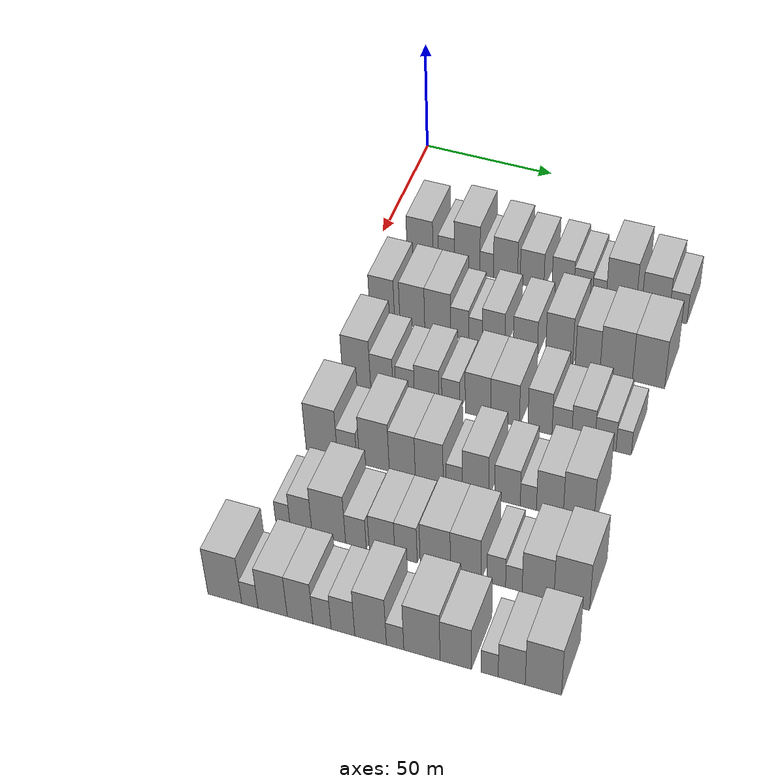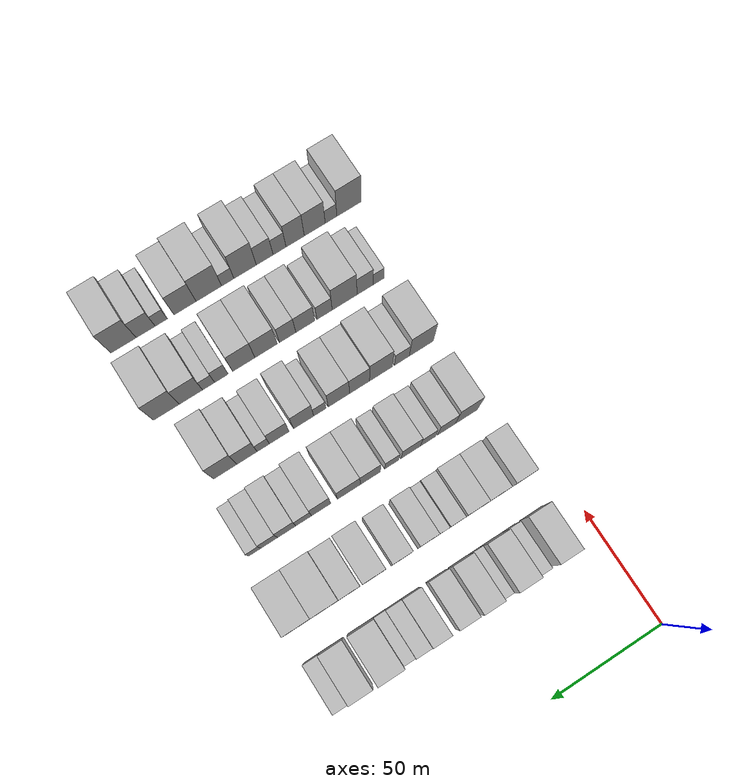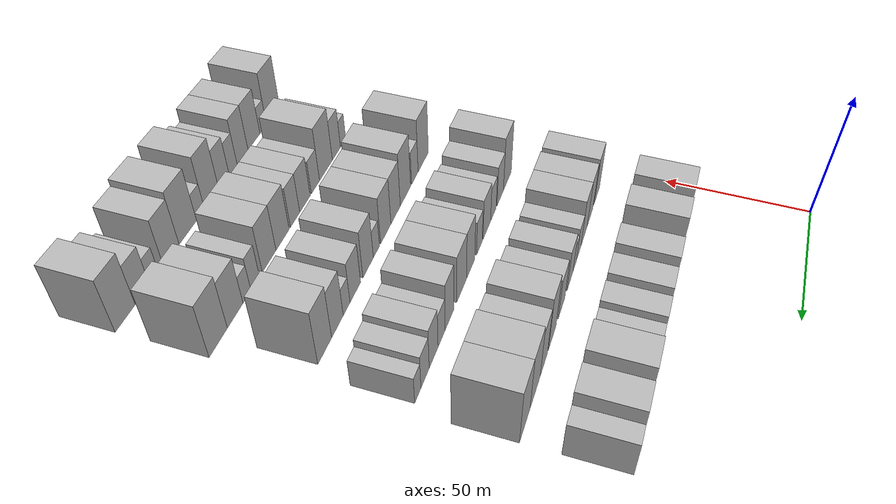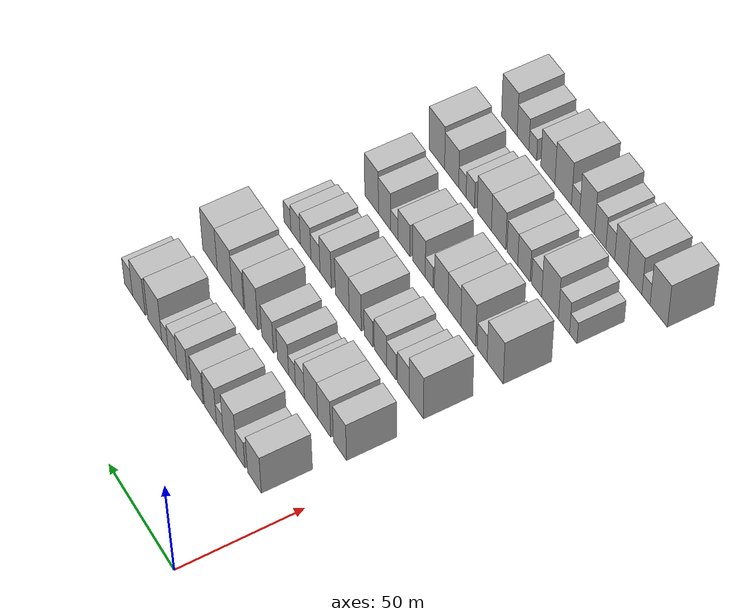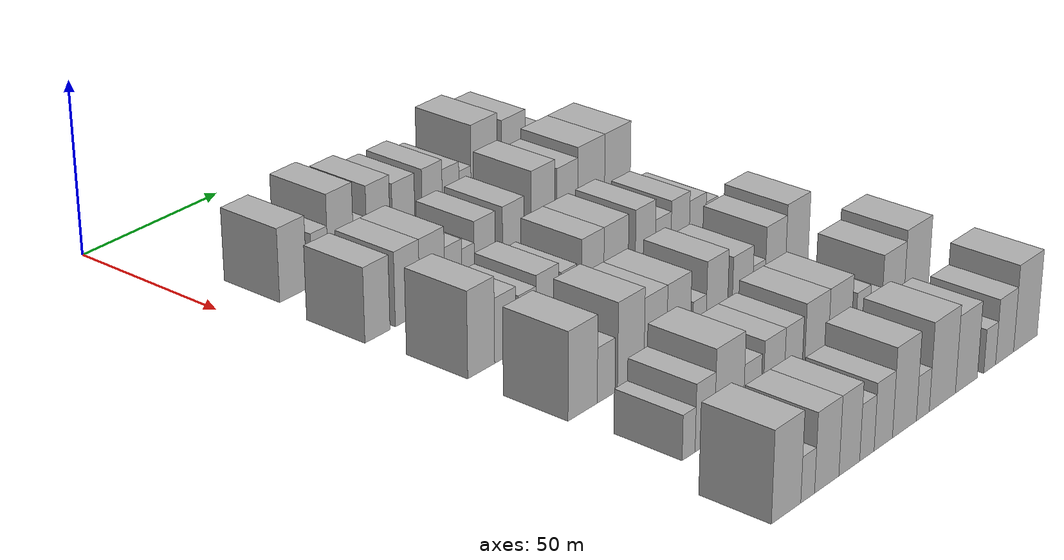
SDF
<sdf version="1.6">
 <world name="default">
  <model name="building_61">
   <static>1</static>
   <pose>50.0000 17.9974 0 0.000000 0.000000 0.000000</pose>
   <link name="link">
    <pose>0 0 10.50 0 0 0</pose>
    <collision name="collision"><geometry><box><size>20.0000 10.1035 21.0000</size></box></geometry></collision>
    <visual name="visual">
     <cast_shadows>0</cast_shadows>
     <geometry><box><size>20.0000 10.1035 21.0000</size></box></geometry>
     <material>
      <script>
       <uri>model://HANNAS_wall/materials/scripts</uri>
       <uri>model://HANNAS_wall/materials/textures</uri>
       <name>vrc/HANNAS_wall</name>
      </script>
     </material>
    </visual>
   </link>
  </model>
  <model name="building_62">
   <static>1</static>
   <pose>50.0000 28.1549 0 0.000000 0.000000 0.000000</pose>
   <link name="link">
    <pose>0 0 7.50 0 0 0</pose>
    <collision name="collision"><geometry><box><size>20.0000 6.2114 15.0000</size></box></geometry></collision>
    <visual name="visual">
     <cast_shadows>0</cast_shadows>
     <geometry><box><size>20.0000 6.2114 15.0000</size></box></geometry>
     <material>
      <script>
       <uri>model://HANNAS_wall/materials/scripts</uri>
       <uri>model://HANNAS_wall/materials/textures</uri>
       <name>vrc/HANNAS_wall</name>
      </script>
     </material>
    </visual>
   </link>
  </model>
  <model name="building_63">
   <static>1</static>
   <pose>50.0000 36.1741 0 0.000000 0.000000 0.000000</pose>
   <link name="link">
    <pose>0 0 12.00 0 0 0</pose>
    <collision name="collision"><geometry><box><size>20.0000 9.8270 24.0000</size></box></geometry></collision>
    <visual name="visual">
     <cast_shadows>0</cast_shadows>
     <geometry><box><size>20.0000 9.8270 24.0000</size></box></geometry>
     <material>
      <script>
       <uri>model://HANNAS_wall/materials/scripts</uri>
       <uri>model://HANNAS_wall/materials/textures</uri>
       <name>vrc/HANNAS_wall</name>
      </script>
     </material>
    </visual>
   </link>
  </model>
  <model name="building_64">
   <static>1</static>
   <pose>50.0000 43.6638 0 0.000000 0.000000 0.000000</pose>
   <link name="link">
    <pose>0 0 6.00 0 0 0</pose>
    <collision name="collision"><geometry><box><size>20.0000 5.1523 12.0000</size></box></geometry></collision>
    <visual name="visual">
     <cast_shadows>0</cast_shadows>
     <geometry><box><size>20.0000 5.1523 12.0000</size></box></geometry>
     <material>
      <script>
       <uri>model://HANNAS_wall/materials/scripts</uri>
       <uri>model://HANNAS_wall/materials/textures</uri>
       <name>vrc/HANNAS_wall</name>
      </script>
     </material>
    </visual>
   </link>
  </model>
  <model name="building_65">
   <static>1</static>
   <pose>50.0000 50.8078 0 0.000000 0.000000 0.000000</pose>
   <link name="link">
    <pose>0 0 10.50 0 0 0</pose>
    <collision name="collision"><geometry><box><size>20.0000 9.1359 21.0000</size></box></geometry></collision>
    <visual name="visual">
     <cast_shadows>0</cast_shadows>
     <geometry><box><size>20.0000 9.1359 21.0000</size></box></geometry>
     <material>
      <script>
       <uri>model://HANNAS_wall/materials/scripts</uri>
       <uri>model://HANNAS_wall/materials/textures</uri>
       <name>vrc/HANNAS_wall</name>
      </script>
     </material>
    </visual>
   </link>
  </model>
  <model name="building_66">
   <static>1</static>
   <pose>50.0000 60.8587 0 0.000000 0.000000 0.000000</pose>
   <link name="link">
    <pose>0 0 9.00 0 0 0</pose>
    <collision name="collision"><geometry><box><size>20.0000 8.9657 18.0000</size></box></geometry></collision>
    <visual name="visual">
     <cast_shadows>0</cast_shadows>
     <geometry><box><size>20.0000 8.9657 18.0000</size></box></geometry>
     <material>
      <script>
       <uri>model://HANNAS_wall/materials/scripts</uri>
       <uri>model://HANNAS_wall/materials/textures</uri>
       <name>vrc/HANNAS_wall</name>
      </script>
     </material>
    </visual>
   </link>
  </model>
  <model name="building_67">
   <static>1</static>
   <pose>50.0000 72.4651 0 0.000000 0.000000 0.000000</pose>
   <link name="link">
    <pose>0 0 9.00 0 0 0</pose>
    <collision name="collision"><geometry><box><size>20.0000 8.2472 18.0000</size></box></geometry></collision>
    <visual name="visual">
     <cast_shadows>0</cast_shadows>
     <geometry><box><size>20.0000 8.2472 18.0000</size></box></geometry>
     <material>
      <script>
       <uri>model://HANNAS_wall/materials/scripts</uri>
       <uri>model://HANNAS_wall/materials/textures</uri>
       <name>vrc/HANNAS_wall</name>
      </script>
     </material>
    </visual>
   </link>
  </model>
  <model name="building_68">
   <static>1</static>
   <pose>50.0000 80.0675 0 0.000000 0.000000 0.000000</pose>
   <link name="link">
    <pose>0 0 7.50 0 0 0</pose>
    <collision name="collision"><geometry><box><size>20.0000 6.9575 15.0000</size></box></geometry></collision>
    <visual name="visual">
     <cast_shadows>0</cast_shadows>
     <geometry><box><size>20.0000 6.9575 15.0000</size></box></geometry>
     <material>
      <script>
       <uri>model://HANNAS_wall/materials/scripts</uri>
       <uri>model://HANNAS_wall/materials/textures</uri>
       <name>vrc/HANNAS_wall</name>
      </script>
     </material>
    </visual>
   </link>
  </model>
  <model name="building_69">
   <static>1</static>
   <pose>50.0000 86.0731 0 0.000000 0.000000 0.000000</pose>
   <link name="link">
    <pose>0 0 6.00 0 0 0</pose>
    <collision name="collision"><geometry><box><size>20.0000 5.0536 12.0000</size></box></geometry></collision>
    <visual name="visual">
     <cast_shadows>0</cast_shadows>
     <geometry><box><size>20.0000 5.0536 12.0000</size></box></geometry>
     <material>
      <script>
       <uri>model://HANNAS_wall/materials/scripts</uri>
       <uri>model://HANNAS_wall/materials/textures</uri>
       <name>vrc/HANNAS_wall</name>
      </script>
     </material>
    </visual>
   </link>
  </model>
  <model name="building_70">
   <static>1</static>
   <pose>50.0000 94.1689 0 0.000000 0.000000 0.000000</pose>
   <link name="link">
    <pose>0 0 12.00 0 0 0</pose>
    <collision name="collision"><geometry><box><size>20.0000 11.1380 24.0000</size></box></geometry></collision>
    <visual name="visual">
     <cast_shadows>0</cast_shadows>
     <geometry><box><size>20.0000 11.1380 24.0000</size></box></geometry>
     <material>
      <script>
       <uri>model://HANNAS_wall/materials/scripts</uri>
       <uri>model://HANNAS_wall/materials/textures</uri>
       <name>vrc/HANNAS_wall</name>
      </script>
     </material>
    </visual>
   </link>
  </model>
  <model name="building_71">
   <static>1</static>
   <pose>50.0000 106.8339 0 0.000000 0.000000 0.000000</pose>
   <link name="link">
    <pose>0 0 10.50 0 0 0</pose>
    <collision name="collision"><geometry><box><size>20.0000 10.1919 21.0000</size></box></geometry></collision>
    <visual name="visual">
     <cast_shadows>0</cast_shadows>
     <geometry><box><size>20.0000 10.1919 21.0000</size></box></geometry>
     <material>
      <script>
       <uri>model://HANNAS_wall/materials/scripts</uri>
       <uri>model://HANNAS_wall/materials/textures</uri>
       <name>vrc/HANNAS_wall</name>
      </script>
     </material>
    </visual>
   </link>
  </model>
  <model name="building_72">
   <static>1</static>
   <pose>50.0000 115.2195 0 0.000000 0.000000 0.000000</pose>
   <link name="link">
    <pose>0 0 7.50 0 0 0</pose>
    <collision name="collision"><geometry><box><size>20.0000 6.5793 15.0000</size></box></geometry></collision>
    <visual name="visual">
     <cast_shadows>0</cast_shadows>
     <geometry><box><size>20.0000 6.5793 15.0000</size></box></geometry>
     <material>
      <script>
       <uri>model://HANNAS_wall/materials/scripts</uri>
       <uri>model://HANNAS_wall/materials/textures</uri>
       <name>vrc/HANNAS_wall</name>
      </script>
     </material>
    </visual>
   </link>
  </model>
  <model name="building_183">
   <static>1</static>
   <pose>82.0000 15.0049 0 0.000000 0.000000 0.000000</pose>
   <link name="link">
    <pose>0 0 10.50 0 0 0</pose>
    <collision name="collision"><geometry><box><size>20.0000 9.3502 21.0000</size></box></geometry></collision>
    <visual name="visual">
     <cast_shadows>0</cast_shadows>
     <geometry><box><size>20.0000 9.3502 21.0000</size></box></geometry>
     <material>
      <script>
       <uri>model://HANNAS_wall/materials/scripts</uri>
       <uri>model://HANNAS_wall/materials/textures</uri>
       <name>vrc/HANNAS_wall</name>
      </script>
     </material>
    </visual>
   </link>
  </model>
  <model name="building_184">
   <static>1</static>
   <pose>82.0000 26.3731 0 0.000000 0.000000 0.000000</pose>
   <link name="link">
    <pose>0 0 10.50 0 0 0</pose>
    <collision name="collision"><geometry><box><size>20.0000 9.3861 21.0000</size></box></geometry></collision>
    <visual name="visual">
     <cast_shadows>0</cast_shadows>
     <geometry><box><size>20.0000 9.3861 21.0000</size></box></geometry>
     <material>
      <script>
       <uri>model://HANNAS_wall/materials/scripts</uri>
       <uri>model://HANNAS_wall/materials/textures</uri>
       <name>vrc/HANNAS_wall</name>
      </script>
     </material>
    </visual>
   </link>
  </model>
  <model name="building_185">
   <static>1</static>
   <pose>82.0000 35.9225 0 0.000000 0.000000 0.000000</pose>
   <link name="link">
    <pose>0 0 10.50 0 0 0</pose>
    <collision name="collision"><geometry><box><size>20.0000 9.7128 21.0000</size></box></geometry></collision>
    <visual name="visual">
     <cast_shadows>0</cast_shadows>
     <geometry><box><size>20.0000 9.7128 21.0000</size></box></geometry>
     <material>
      <script>
       <uri>model://HANNAS_wall/materials/scripts</uri>
       <uri>model://HANNAS_wall/materials/textures</uri>
       <name>vrc/HANNAS_wall</name>
      </script>
     </material>
    </visual>
   </link>
  </model>
  <model name="building_186">
   <static>1</static>
   <pose>82.0000 44.1371 0 0.000000 0.000000 0.000000</pose>
   <link name="link">
    <pose>0 0 7.50 0 0 0</pose>
    <collision name="collision"><geometry><box><size>20.0000 6.7163 15.0000</size></box></geometry></collision>
    <visual name="visual">
     <cast_shadows>0</cast_shadows>
     <geometry><box><size>20.0000 6.7163 15.0000</size></box></geometry>
     <material>
      <script>
       <uri>model://HANNAS_wall/materials/scripts</uri>
       <uri>model://HANNAS_wall/materials/textures</uri>
       <name>vrc/HANNAS_wall</name>
      </script>
     </material>
    </visual>
   </link>
  </model>
  <model name="building_187">
   <static>1</static>
   <pose>82.0000 49.9935 0 0.000000 0.000000 0.000000</pose>
   <link name="link">
    <pose>0 0 6.00 0 0 0</pose>
    <collision name="collision"><geometry><box><size>20.0000 4.9966 12.0000</size></box></geometry></collision>
    <visual name="visual">
     <cast_shadows>0</cast_shadows>
     <geometry><box><size>20.0000 4.9966 12.0000</size></box></geometry>
     <material>
      <script>
       <uri>model://HANNAS_wall/materials/scripts</uri>
       <uri>model://HANNAS_wall/materials/textures</uri>
       <name>vrc/HANNAS_wall</name>
      </script>
     </material>
    </visual>
   </link>
  </model>
  <model name="building_188">
   <static>1</static>
   <pose>82.0000 56.6898 0 0.000000 0.000000 0.000000</pose>
   <link name="link">
    <pose>0 0 9.00 0 0 0</pose>
    <collision name="collision"><geometry><box><size>20.0000 8.3959 18.0000</size></box></geometry></collision>
    <visual name="visual">
     <cast_shadows>0</cast_shadows>
     <geometry><box><size>20.0000 8.3959 18.0000</size></box></geometry>
     <material>
      <script>
       <uri>model://HANNAS_wall/materials/scripts</uri>
       <uri>model://HANNAS_wall/materials/textures</uri>
       <name>vrc/HANNAS_wall</name>
      </script>
     </material>
    </visual>
   </link>
  </model>
  <model name="building_189">
   <static>1</static>
   <pose>82.0000 68.3073 0 0.000000 0.000000 0.000000</pose>
   <link name="link">
    <pose>0 0 9.00 0 0 0</pose>
    <collision name="collision"><geometry><box><size>20.0000 8.8391 18.0000</size></box></geometry></collision>
    <visual name="visual">
     <cast_shadows>0</cast_shadows>
     <geometry><box><size>20.0000 8.8391 18.0000</size></box></geometry>
     <material>
      <script>
       <uri>model://HANNAS_wall/materials/scripts</uri>
       <uri>model://HANNAS_wall/materials/textures</uri>
       <name>vrc/HANNAS_wall</name>
      </script>
     </material>
    </visual>
   </link>
  </model>
  <model name="building_190">
   <static>1</static>
   <pose>82.0000 80.6348 0 0.000000 0.000000 0.000000</pose>
   <link name="link">
    <pose>0 0 12.00 0 0 0</pose>
    <collision name="collision"><geometry><box><size>20.0000 9.8159 24.0000</size></box></geometry></collision>
    <visual name="visual">
     <cast_shadows>0</cast_shadows>
     <geometry><box><size>20.0000 9.8159 24.0000</size></box></geometry>
     <material>
      <script>
       <uri>model://HANNAS_wall/materials/scripts</uri>
       <uri>model://HANNAS_wall/materials/textures</uri>
       <name>vrc/HANNAS_wall</name>
      </script>
     </material>
    </visual>
   </link>
  </model>
  <model name="building_191">
   <static>1</static>
   <pose>82.0000 91.0272 0 0.000000 0.000000 0.000000</pose>
   <link name="link">
    <pose>0 0 10.50 0 0 0</pose>
    <collision name="collision"><geometry><box><size>20.0000 8.9688 21.0000</size></box></geometry></collision>
    <visual name="visual">
     <cast_shadows>0</cast_shadows>
     <geometry><box><size>20.0000 8.9688 21.0000</size></box></geometry>
     <material>
      <script>
       <uri>model://HANNAS_wall/materials/scripts</uri>
       <uri>model://HANNAS_wall/materials/textures</uri>
       <name>vrc/HANNAS_wall</name>
      </script>
     </material>
    </visual>
   </link>
  </model>
  <model name="building_192">
   <static>1</static>
   <pose>82.0000 101.3360 0 0.000000 0.000000 0.000000</pose>
   <link name="link">
    <pose>0 0 12.00 0 0 0</pose>
    <collision name="collision"><geometry><box><size>20.0000 11.6489 24.0000</size></box></geometry></collision>
    <visual name="visual">
     <cast_shadows>0</cast_shadows>
     <geometry><box><size>20.0000 11.6489 24.0000</size></box></geometry>
     <material>
      <script>
       <uri>model://HANNAS_wall/materials/scripts</uri>
       <uri>model://HANNAS_wall/materials/textures</uri>
       <name>vrc/HANNAS_wall</name>
      </script>
     </material>
    </visual>
   </link>
  </model>
  <model name="building_193">
   <static>1</static>
   <pose>82.0000 112.9046 0 0.000000 0.000000 0.000000</pose>
   <link name="link">
    <pose>0 0 12.00 0 0 0</pose>
    <collision name="collision"><geometry><box><size>20.0000 11.4883 24.0000</size></box></geometry></collision>
    <visual name="visual">
     <cast_shadows>0</cast_shadows>
     <geometry><box><size>20.0000 11.4883 24.0000</size></box></geometry>
     <material>
      <script>
       <uri>model://HANNAS_wall/materials/scripts</uri>
       <uri>model://HANNAS_wall/materials/textures</uri>
       <name>vrc/HANNAS_wall</name>
      </script>
     </material>
    </visual>
   </link>
  </model>
  <model name="building_297">
   <static>1</static>
   <pose>114.0000 17.5081 0 0.000000 0.000000 0.000000</pose>
   <link name="link">
    <pose>0 0 12.00 0 0 0</pose>
    <collision name="collision"><geometry><box><size>20.0000 10.1824 24.0000</size></box></geometry></collision>
    <visual name="visual">
     <cast_shadows>0</cast_shadows>
     <geometry><box><size>20.0000 10.1824 24.0000</size></box></geometry>
     <material>
      <script>
       <uri>model://HANNAS_wall/materials/scripts</uri>
       <uri>model://HANNAS_wall/materials/textures</uri>
       <name>vrc/HANNAS_wall</name>
      </script>
     </material>
    </visual>
   </link>
  </model>
  <model name="building_298">
   <static>1</static>
   <pose>114.0000 26.7199 0 0.000000 0.000000 0.000000</pose>
   <link name="link">
    <pose>0 0 9.00 0 0 0</pose>
    <collision name="collision"><geometry><box><size>20.0000 8.2411 18.0000</size></box></geometry></collision>
    <visual name="visual">
     <cast_shadows>0</cast_shadows>
     <geometry><box><size>20.0000 8.2411 18.0000</size></box></geometry>
     <material>
      <script>
       <uri>model://HANNAS_wall/materials/scripts</uri>
       <uri>model://HANNAS_wall/materials/textures</uri>
       <name>vrc/HANNAS_wall</name>
      </script>
     </material>
    </visual>
   </link>
  </model>
  <model name="building_299">
   <static>1</static>
   <pose>114.0000 35.2354 0 0.000000 0.000000 0.000000</pose>
   <link name="link">
    <pose>0 0 7.50 0 0 0</pose>
    <collision name="collision"><geometry><box><size>20.0000 6.7900 15.0000</size></box></geometry></collision>
    <visual name="visual">
     <cast_shadows>0</cast_shadows>
     <geometry><box><size>20.0000 6.7900 15.0000</size></box></geometry>
     <material>
      <script>
       <uri>model://HANNAS_wall/materials/scripts</uri>
       <uri>model://HANNAS_wall/materials/textures</uri>
       <name>vrc/HANNAS_wall</name>
      </script>
     </material>
    </visual>
   </link>
  </model>
  <model name="building_300">
   <static>1</static>
   <pose>114.0000 43.0948 0 0.000000 0.000000 0.000000</pose>
   <link name="link">
    <pose>0 0 9.00 0 0 0</pose>
    <collision name="collision"><geometry><box><size>20.0000 8.9289 18.0000</size></box></geometry></collision>
    <visual name="visual">
     <cast_shadows>0</cast_shadows>
     <geometry><box><size>20.0000 8.9289 18.0000</size></box></geometry>
     <material>
      <script>
       <uri>model://HANNAS_wall/materials/scripts</uri>
       <uri>model://HANNAS_wall/materials/textures</uri>
       <name>vrc/HANNAS_wall</name>
      </script>
     </material>
    </visual>
   </link>
  </model>
  <model name="building_301">
   <static>1</static>
   <pose>114.0000 51.7584 0 0.000000 0.000000 0.000000</pose>
   <link name="link">
    <pose>0 0 7.50 0 0 0</pose>
    <collision name="collision"><geometry><box><size>20.0000 6.3983 15.0000</size></box></geometry></collision>
    <visual name="visual">
     <cast_shadows>0</cast_shadows>
     <geometry><box><size>20.0000 6.3983 15.0000</size></box></geometry>
     <material>
      <script>
       <uri>model://HANNAS_wall/materials/scripts</uri>
       <uri>model://HANNAS_wall/materials/textures</uri>
       <name>vrc/HANNAS_wall</name>
      </script>
     </material>
    </visual>
   </link>
  </model>
  <model name="building_302">
   <static>1</static>
   <pose>114.0000 61.4919 0 0.000000 0.000000 0.000000</pose>
   <link name="link">
    <pose>0 0 10.50 0 0 0</pose>
    <collision name="collision"><geometry><box><size>20.0000 9.0688 21.0000</size></box></geometry></collision>
    <visual name="visual">
     <cast_shadows>0</cast_shadows>
     <geometry><box><size>20.0000 9.0688 21.0000</size></box></geometry>
     <material>
      <script>
       <uri>model://HANNAS_wall/materials/scripts</uri>
       <uri>model://HANNAS_wall/materials/textures</uri>
       <name>vrc/HANNAS_wall</name>
      </script>
     </material>
    </visual>
   </link>
  </model>
  <model name="building_303">
   <static>1</static>
   <pose>114.0000 71.1372 0 0.000000 0.000000 0.000000</pose>
   <link name="link">
    <pose>0 0 10.50 0 0 0</pose>
    <collision name="collision"><geometry><box><size>20.0000 10.2218 21.0000</size></box></geometry></collision>
    <visual name="visual">
     <cast_shadows>0</cast_shadows>
     <geometry><box><size>20.0000 10.2218 21.0000</size></box></geometry>
     <material>
      <script>
       <uri>model://HANNAS_wall/materials/scripts</uri>
       <uri>model://HANNAS_wall/materials/textures</uri>
       <name>vrc/HANNAS_wall</name>
      </script>
     </material>
    </visual>
   </link>
  </model>
  <model name="building_304">
   <static>1</static>
   <pose>114.0000 83.5273 0 0.000000 0.000000 0.000000</pose>
   <link name="link">
    <pose>0 0 10.50 0 0 0</pose>
    <collision name="collision"><geometry><box><size>20.0000 8.5583 21.0000</size></box></geometry></collision>
    <visual name="visual">
     <cast_shadows>0</cast_shadows>
     <geometry><box><size>20.0000 8.5583 21.0000</size></box></geometry>
     <material>
      <script>
       <uri>model://HANNAS_wall/materials/scripts</uri>
       <uri>model://HANNAS_wall/materials/textures</uri>
       <name>vrc/HANNAS_wall</name>
      </script>
     </material>
    </visual>
   </link>
  </model>
  <model name="building_305">
   <static>1</static>
   <pose>114.0000 91.2476 0 0.000000 0.000000 0.000000</pose>
   <link name="link">
    <pose>0 0 7.50 0 0 0</pose>
    <collision name="collision"><geometry><box><size>20.0000 6.8824 15.0000</size></box></geometry></collision>
    <visual name="visual">
     <cast_shadows>0</cast_shadows>
     <geometry><box><size>20.0000 6.8824 15.0000</size></box></geometry>
     <material>
      <script>
       <uri>model://HANNAS_wall/materials/scripts</uri>
       <uri>model://HANNAS_wall/materials/textures</uri>
       <name>vrc/HANNAS_wall</name>
      </script>
     </material>
    </visual>
   </link>
  </model>
  <model name="building_306">
   <static>1</static>
   <pose>114.0000 98.7463 0 0.000000 0.000000 0.000000</pose>
   <link name="link">
    <pose>0 0 9.00 0 0 0</pose>
    <collision name="collision"><geometry><box><size>20.0000 8.1150 18.0000</size></box></geometry></collision>
    <visual name="visual">
     <cast_shadows>0</cast_shadows>
     <geometry><box><size>20.0000 8.1150 18.0000</size></box></geometry>
     <material>
      <script>
       <uri>model://HANNAS_wall/materials/scripts</uri>
       <uri>model://HANNAS_wall/materials/textures</uri>
       <name>vrc/HANNAS_wall</name>
      </script>
     </material>
    </visual>
   </link>
  </model>
  <model name="building_307">
   <static>1</static>
   <pose>114.0000 106.4824 0 0.000000 0.000000 0.000000</pose>
   <link name="link">
    <pose>0 0 7.50 0 0 0</pose>
    <collision name="collision"><geometry><box><size>20.0000 7.3571 15.0000</size></box></geometry></collision>
    <visual name="visual">
     <cast_shadows>0</cast_shadows>
     <geometry><box><size>20.0000 7.3571 15.0000</size></box></geometry>
     <material>
      <script>
       <uri>model://HANNAS_wall/materials/scripts</uri>
       <uri>model://HANNAS_wall/materials/textures</uri>
       <name>vrc/HANNAS_wall</name>
      </script>
     </material>
    </visual>
   </link>
  </model>
  <model name="building_308">
   <static>1</static>
   <pose>114.0000 112.8277 0 0.000000 0.000000 0.000000</pose>
   <link name="link">
    <pose>0 0 6.00 0 0 0</pose>
    <collision name="collision"><geometry><box><size>20.0000 5.3336 12.0000</size></box></geometry></collision>
    <visual name="visual">
     <cast_shadows>0</cast_shadows>
     <geometry><box><size>20.0000 5.3336 12.0000</size></box></geometry>
     <material>
      <script>
       <uri>model://HANNAS_wall/materials/scripts</uri>
       <uri>model://HANNAS_wall/materials/textures</uri>
       <name>vrc/HANNAS_wall</name>
      </script>
     </material>
    </visual>
   </link>
  </model>
  <model name="building_414">
   <static>1</static>
   <pose>146.0000 17.1579 0 0.000000 0.000000 0.000000</pose>
   <link name="link">
    <pose>0 0 12.00 0 0 0</pose>
    <collision name="collision"><geometry><box><size>20.0000 11.1944 24.0000</size></box></geometry></collision>
    <visual name="visual">
     <cast_shadows>0</cast_shadows>
     <geometry><box><size>20.0000 11.1944 24.0000</size></box></geometry>
     <material>
      <script>
       <uri>model://HANNAS_wall/materials/scripts</uri>
       <uri>model://HANNAS_wall/materials/textures</uri>
       <name>vrc/HANNAS_wall</name>
      </script>
     </material>
    </visual>
   </link>
  </model>
  <model name="building_415">
   <static>1</static>
   <pose>146.0000 26.2117 0 0.000000 0.000000 0.000000</pose>
   <link name="link">
    <pose>0 0 7.50 0 0 0</pose>
    <collision name="collision"><geometry><box><size>20.0000 6.9132 15.0000</size></box></geometry></collision>
    <visual name="visual">
     <cast_shadows>0</cast_shadows>
     <geometry><box><size>20.0000 6.9132 15.0000</size></box></geometry>
     <material>
      <script>
       <uri>model://HANNAS_wall/materials/scripts</uri>
       <uri>model://HANNAS_wall/materials/textures</uri>
       <name>vrc/HANNAS_wall</name>
      </script>
     </material>
    </visual>
   </link>
  </model>
  <model name="building_416">
   <static>1</static>
   <pose>146.0000 35.9167 0 0.000000 0.000000 0.000000</pose>
   <link name="link">
    <pose>0 0 12.00 0 0 0</pose>
    <collision name="collision"><geometry><box><size>20.0000 10.4969 24.0000</size></box></geometry></collision>
    <visual name="visual">
     <cast_shadows>0</cast_shadows>
     <geometry><box><size>20.0000 10.4969 24.0000</size></box></geometry>
     <material>
      <script>
       <uri>model://HANNAS_wall/materials/scripts</uri>
       <uri>model://HANNAS_wall/materials/textures</uri>
       <name>vrc/HANNAS_wall</name>
      </script>
     </material>
    </visual>
   </link>
  </model>
  <model name="building_417">
   <static>1</static>
   <pose>146.0000 45.7508 0 0.000000 0.000000 0.000000</pose>
   <link name="link">
    <pose>0 0 10.50 0 0 0</pose>
    <collision name="collision"><geometry><box><size>20.0000 9.1714 21.0000</size></box></geometry></collision>
    <visual name="visual">
     <cast_shadows>0</cast_shadows>
     <geometry><box><size>20.0000 9.1714 21.0000</size></box></geometry>
     <material>
      <script>
       <uri>model://HANNAS_wall/materials/scripts</uri>
       <uri>model://HANNAS_wall/materials/textures</uri>
       <name>vrc/HANNAS_wall</name>
      </script>
     </material>
    </visual>
   </link>
  </model>
  <model name="building_418">
   <static>1</static>
   <pose>146.0000 55.2197 0 0.000000 0.000000 0.000000</pose>
   <link name="link">
    <pose>0 0 10.50 0 0 0</pose>
    <collision name="collision"><geometry><box><size>20.0000 9.7663 21.0000</size></box></geometry></collision>
    <visual name="visual">
     <cast_shadows>0</cast_shadows>
     <geometry><box><size>20.0000 9.7663 21.0000</size></box></geometry>
     <material>
      <script>
       <uri>model://HANNAS_wall/materials/scripts</uri>
       <uri>model://HANNAS_wall/materials/textures</uri>
       <name>vrc/HANNAS_wall</name>
      </script>
     </material>
    </visual>
   </link>
  </model>
  <model name="building_419">
   <static>1</static>
   <pose>146.0000 63.8974 0 0.000000 0.000000 0.000000</pose>
   <link name="link">
    <pose>0 0 6.00 0 0 0</pose>
    <collision name="collision"><geometry><box><size>20.0000 5.5892 12.0000</size></box></geometry></collision>
    <visual name="visual">
     <cast_shadows>0</cast_shadows>
     <geometry><box><size>20.0000 5.5892 12.0000</size></box></geometry>
     <material>
      <script>
       <uri>model://HANNAS_wall/materials/scripts</uri>
       <uri>model://HANNAS_wall/materials/textures</uri>
       <name>vrc/HANNAS_wall</name>
      </script>
     </material>
    </visual>
   </link>
  </model>
  <model name="building_420">
   <static>1</static>
   <pose>146.0000 71.2659 0 0.000000 0.000000 0.000000</pose>
   <link name="link">
    <pose>0 0 10.50 0 0 0</pose>
    <collision name="collision"><geometry><box><size>20.0000 9.1478 21.0000</size></box></geometry></collision>
    <visual name="visual">
     <cast_shadows>0</cast_shadows>
     <geometry><box><size>20.0000 9.1478 21.0000</size></box></geometry>
     <material>
      <script>
       <uri>model://HANNAS_wall/materials/scripts</uri>
       <uri>model://HANNAS_wall/materials/textures</uri>
       <name>vrc/HANNAS_wall</name>
      </script>
     </material>
    </visual>
   </link>
  </model>
  <model name="building_421">
   <static>1</static>
   <pose>146.0000 82.2584 0 0.000000 0.000000 0.000000</pose>
   <link name="link">
    <pose>0 0 9.00 0 0 0</pose>
    <collision name="collision"><geometry><box><size>20.0000 8.8373 18.0000</size></box></geometry></collision>
    <visual name="visual">
     <cast_shadows>0</cast_shadows>
     <geometry><box><size>20.0000 8.8373 18.0000</size></box></geometry>
     <material>
      <script>
       <uri>model://HANNAS_wall/materials/scripts</uri>
       <uri>model://HANNAS_wall/materials/textures</uri>
       <name>vrc/HANNAS_wall</name>
      </script>
     </material>
    </visual>
   </link>
  </model>
  <model name="building_422">
   <static>1</static>
   <pose>146.0000 89.4345 0 0.000000 0.000000 0.000000</pose>
   <link name="link">
    <pose>0 0 6.00 0 0 0</pose>
    <collision name="collision"><geometry><box><size>20.0000 5.5148 12.0000</size></box></geometry></collision>
    <visual name="visual">
     <cast_shadows>0</cast_shadows>
     <geometry><box><size>20.0000 5.5148 12.0000</size></box></geometry>
     <material>
      <script>
       <uri>model://HANNAS_wall/materials/scripts</uri>
       <uri>model://HANNAS_wall/materials/textures</uri>
       <name>vrc/HANNAS_wall</name>
      </script>
     </material>
    </visual>
   </link>
  </model>
  <model name="building_423">
   <static>1</static>
   <pose>146.0000 96.7338 0 0.000000 0.000000 0.000000</pose>
   <link name="link">
    <pose>0 0 10.50 0 0 0</pose>
    <collision name="collision"><geometry><box><size>20.0000 9.0839 21.0000</size></box></geometry></collision>
    <visual name="visual">
     <cast_shadows>0</cast_shadows>
     <geometry><box><size>20.0000 9.0839 21.0000</size></box></geometry>
     <material>
      <script>
       <uri>model://HANNAS_wall/materials/scripts</uri>
       <uri>model://HANNAS_wall/materials/textures</uri>
       <name>vrc/HANNAS_wall</name>
      </script>
     </material>
    </visual>
   </link>
  </model>
  <model name="building_424">
   <static>1</static>
   <pose>146.0000 106.4583 0 0.000000 0.000000 0.000000</pose>
   <link name="link">
    <pose>0 0 12.00 0 0 0</pose>
    <collision name="collision"><geometry><box><size>20.0000 10.3649 24.0000</size></box></geometry></collision>
    <visual name="visual">
     <cast_shadows>0</cast_shadows>
     <geometry><box><size>20.0000 10.3649 24.0000</size></box></geometry>
     <material>
      <script>
       <uri>model://HANNAS_wall/materials/scripts</uri>
       <uri>model://HANNAS_wall/materials/textures</uri>
       <name>vrc/HANNAS_wall</name>
      </script>
     </material>
    </visual>
   </link>
  </model>
  <model name="building_524">
   <static>1</static>
   <pose>178.0000 16.3538 0 0.000000 0.000000 0.000000</pose>
   <link name="link">
    <pose>0 0 6.00 0 0 0</pose>
    <collision name="collision"><geometry><box><size>20.0000 5.0173 12.0000</size></box></geometry></collision>
    <visual name="visual">
     <cast_shadows>0</cast_shadows>
     <geometry><box><size>20.0000 5.0173 12.0000</size></box></geometry>
     <material>
      <script>
       <uri>model://HANNAS_wall/materials/scripts</uri>
       <uri>model://HANNAS_wall/materials/textures</uri>
       <name>vrc/HANNAS_wall</name>
      </script>
     </material>
    </visual>
   </link>
  </model>
  <model name="building_525">
   <static>1</static>
   <pose>178.0000 22.6431 0 0.000000 0.000000 0.000000</pose>
   <link name="link">
    <pose>0 0 9.00 0 0 0</pose>
    <collision name="collision"><geometry><box><size>20.0000 7.5612 18.0000</size></box></geometry></collision>
    <visual name="visual">
     <cast_shadows>0</cast_shadows>
     <geometry><box><size>20.0000 7.5612 18.0000</size></box></geometry>
     <material>
      <script>
       <uri>model://HANNAS_wall/materials/scripts</uri>
       <uri>model://HANNAS_wall/materials/textures</uri>
       <name>vrc/HANNAS_wall</name>
      </script>
     </material>
    </visual>
   </link>
  </model>
  <model name="building_526">
   <static>1</static>
   <pose>178.0000 32.2104 0 0.000000 0.000000 0.000000</pose>
   <link name="link">
    <pose>0 0 12.00 0 0 0</pose>
    <collision name="collision"><geometry><box><size>20.0000 11.5736 24.0000</size></box></geometry></collision>
    <visual name="visual">
     <cast_shadows>0</cast_shadows>
     <geometry><box><size>20.0000 11.5736 24.0000</size></box></geometry>
     <material>
      <script>
       <uri>model://HANNAS_wall/materials/scripts</uri>
       <uri>model://HANNAS_wall/materials/textures</uri>
       <name>vrc/HANNAS_wall</name>
      </script>
     </material>
    </visual>
   </link>
  </model>
  <model name="building_527">
   <static>1</static>
   <pose>178.0000 41.5459 0 0.000000 0.000000 0.000000</pose>
   <link name="link">
    <pose>0 0 7.50 0 0 0</pose>
    <collision name="collision"><geometry><box><size>20.0000 7.0974 15.0000</size></box></geometry></collision>
    <visual name="visual">
     <cast_shadows>0</cast_shadows>
     <geometry><box><size>20.0000 7.0974 15.0000</size></box></geometry>
     <material>
      <script>
       <uri>model://HANNAS_wall/materials/scripts</uri>
       <uri>model://HANNAS_wall/materials/textures</uri>
       <name>vrc/HANNAS_wall</name>
      </script>
     </material>
    </visual>
   </link>
  </model>
  <model name="building_528">
   <static>1</static>
   <pose>178.0000 50.4609 0 0.000000 0.000000 0.000000</pose>
   <link name="link">
    <pose>0 0 9.00 0 0 0</pose>
    <collision name="collision"><geometry><box><size>20.0000 8.7324 18.0000</size></box></geometry></collision>
    <visual name="visual">
     <cast_shadows>0</cast_shadows>
     <geometry><box><size>20.0000 8.7324 18.0000</size></box></geometry>
     <material>
      <script>
       <uri>model://HANNAS_wall/materials/scripts</uri>
       <uri>model://HANNAS_wall/materials/textures</uri>
       <name>vrc/HANNAS_wall</name>
      </script>
     </material>
    </visual>
   </link>
  </model>
  <model name="building_529">
   <static>1</static>
   <pose>178.0000 58.6099 0 0.000000 0.000000 0.000000</pose>
   <link name="link">
    <pose>0 0 9.00 0 0 0</pose>
    <collision name="collision"><geometry><box><size>20.0000 7.5657 18.0000</size></box></geometry></collision>
    <visual name="visual">
     <cast_shadows>0</cast_shadows>
     <geometry><box><size>20.0000 7.5657 18.0000</size></box></geometry>
     <material>
      <script>
       <uri>model://HANNAS_wall/materials/scripts</uri>
       <uri>model://HANNAS_wall/materials/textures</uri>
       <name>vrc/HANNAS_wall</name>
      </script>
     </material>
    </visual>
   </link>
  </model>
  <model name="building_530">
   <static>1</static>
   <pose>178.0000 68.4903 0 0.000000 0.000000 0.000000</pose>
   <link name="link">
    <pose>0 0 10.50 0 0 0</pose>
    <collision name="collision"><geometry><box><size>20.0000 10.1950 21.0000</size></box></geometry></collision>
    <visual name="visual">
     <cast_shadows>0</cast_shadows>
     <geometry><box><size>20.0000 10.1950 21.0000</size></box></geometry>
     <material>
      <script>
       <uri>model://HANNAS_wall/materials/scripts</uri>
       <uri>model://HANNAS_wall/materials/textures</uri>
       <name>vrc/HANNAS_wall</name>
      </script>
     </material>
    </visual>
   </link>
  </model>
  <model name="building_531">
   <static>1</static>
   <pose>178.0000 78.6793 0 0.000000 0.000000 0.000000</pose>
   <link name="link">
    <pose>0 0 10.50 0 0 0</pose>
    <collision name="collision"><geometry><box><size>20.0000 10.1830 21.0000</size></box></geometry></collision>
    <visual name="visual">
     <cast_shadows>0</cast_shadows>
     <geometry><box><size>20.0000 10.1830 21.0000</size></box></geometry>
     <material>
      <script>
       <uri>model://HANNAS_wall/materials/scripts</uri>
       <uri>model://HANNAS_wall/materials/textures</uri>
       <name>vrc/HANNAS_wall</name>
      </script>
     </material>
    </visual>
   </link>
  </model>
  <model name="building_532">
   <static>1</static>
   <pose>178.0000 88.8379 0 0.000000 0.000000 0.000000</pose>
   <link name="link">
    <pose>0 0 7.50 0 0 0</pose>
    <collision name="collision"><geometry><box><size>20.0000 6.1342 15.0000</size></box></geometry></collision>
    <visual name="visual">
     <cast_shadows>0</cast_shadows>
     <geometry><box><size>20.0000 6.1342 15.0000</size></box></geometry>
     <material>
      <script>
       <uri>model://HANNAS_wall/materials/scripts</uri>
       <uri>model://HANNAS_wall/materials/textures</uri>
       <name>vrc/HANNAS_wall</name>
      </script>
     </material>
    </visual>
   </link>
  </model>
  <model name="building_533">
   <static>1</static>
   <pose>178.0000 94.6397 0 0.000000 0.000000 0.000000</pose>
   <link name="link">
    <pose>0 0 6.00 0 0 0</pose>
    <collision name="collision"><geometry><box><size>20.0000 5.4693 12.0000</size></box></geometry></collision>
    <visual name="visual">
     <cast_shadows>0</cast_shadows>
     <geometry><box><size>20.0000 5.4693 12.0000</size></box></geometry>
     <material>
      <script>
       <uri>model://HANNAS_wall/materials/scripts</uri>
       <uri>model://HANNAS_wall/materials/textures</uri>
       <name>vrc/HANNAS_wall</name>
      </script>
     </material>
    </visual>
   </link>
  </model>
  <model name="building_534">
   <static>1</static>
   <pose>178.0000 102.5778 0 0.000000 0.000000 0.000000</pose>
   <link name="link">
    <pose>0 0 10.50 0 0 0</pose>
    <collision name="collision"><geometry><box><size>20.0000 10.4069 21.0000</size></box></geometry></collision>
    <visual name="visual">
     <cast_shadows>0</cast_shadows>
     <geometry><box><size>20.0000 10.4069 21.0000</size></box></geometry>
     <material>
      <script>
       <uri>model://HANNAS_wall/materials/scripts</uri>
       <uri>model://HANNAS_wall/materials/textures</uri>
       <name>vrc/HANNAS_wall</name>
      </script>
     </material>
    </visual>
   </link>
  </model>
  <model name="building_535">
   <static>1</static>
   <pose>178.0000 113.5958 0 0.000000 0.000000 0.000000</pose>
   <link name="link">
    <pose>0 0 12.00 0 0 0</pose>
    <collision name="collision"><geometry><box><size>20.0000 11.6291 24.0000</size></box></geometry></collision>
    <visual name="visual">
     <cast_shadows>0</cast_shadows>
     <geometry><box><size>20.0000 11.6291 24.0000</size></box></geometry>
     <material>
      <script>
       <uri>model://HANNAS_wall/materials/scripts</uri>
       <uri>model://HANNAS_wall/materials/textures</uri>
       <name>vrc/HANNAS_wall</name>
      </script>
     </material>
    </visual>
   </link>
  </model>
  <model name="building_651">
   <static>1</static>
   <pose>210.0000 9.7686 0 0.000000 0.000000 0.000000</pose>
   <link name="link">
    <pose>0 0 12.00 0 0 0</pose>
    <collision name="collision"><geometry><box><size>20.0000 11.5069 24.0000</size></box></geometry></collision>
    <visual name="visual">
     <cast_shadows>0</cast_shadows>
     <geometry><box><size>20.0000 11.5069 24.0000</size></box></geometry>
     <material>
      <script>
       <uri>model://HANNAS_wall/materials/scripts</uri>
       <uri>model://HANNAS_wall/materials/textures</uri>
       <name>vrc/HANNAS_wall</name>
      </script>
     </material>
    </visual>
   </link>
  </model>
  <model name="building_652">
   <static>1</static>
   <pose>210.0000 18.2734 0 0.000000 0.000000 0.000000</pose>
   <link name="link">
    <pose>0 0 6.00 0 0 0</pose>
    <collision name="collision"><geometry><box><size>20.0000 5.5027 12.0000</size></box></geometry></collision>
    <visual name="visual">
     <cast_shadows>0</cast_shadows>
     <geometry><box><size>20.0000 5.5027 12.0000</size></box></geometry>
     <material>
      <script>
       <uri>model://HANNAS_wall/materials/scripts</uri>
       <uri>model://HANNAS_wall/materials/textures</uri>
       <name>vrc/HANNAS_wall</name>
      </script>
     </material>
    </visual>
   </link>
  </model>
  <model name="building_653">
   <static>1</static>
   <pose>210.0000 25.9452 0 0.000000 0.000000 0.000000</pose>
   <link name="link">
    <pose>0 0 10.50 0 0 0</pose>
    <collision name="collision"><geometry><box><size>20.0000 9.8409 21.0000</size></box></geometry></collision>
    <visual name="visual">
     <cast_shadows>0</cast_shadows>
     <geometry><box><size>20.0000 9.8409 21.0000</size></box></geometry>
     <material>
      <script>
       <uri>model://HANNAS_wall/materials/scripts</uri>
       <uri>model://HANNAS_wall/materials/textures</uri>
       <name>vrc/HANNAS_wall</name>
      </script>
     </material>
    </visual>
   </link>
  </model>
  <model name="building_654">
   <static>1</static>
   <pose>210.0000 35.1606 0 0.000000 0.000000 0.000000</pose>
   <link name="link">
    <pose>0 0 10.50 0 0 0</pose>
    <collision name="collision"><geometry><box><size>20.0000 8.5900 21.0000</size></box></geometry></collision>
    <visual name="visual">
     <cast_shadows>0</cast_shadows>
     <geometry><box><size>20.0000 8.5900 21.0000</size></box></geometry>
     <material>
      <script>
       <uri>model://HANNAS_wall/materials/scripts</uri>
       <uri>model://HANNAS_wall/materials/textures</uri>
       <name>vrc/HANNAS_wall</name>
      </script>
     </material>
    </visual>
   </link>
  </model>
  <model name="building_655">
   <static>1</static>
   <pose>210.0000 42.4827 0 0.000000 0.000000 0.000000</pose>
   <link name="link">
    <pose>0 0 7.50 0 0 0</pose>
    <collision name="collision"><geometry><box><size>20.0000 6.0542 15.0000</size></box></geometry></collision>
    <visual name="visual">
     <cast_shadows>0</cast_shadows>
     <geometry><box><size>20.0000 6.0542 15.0000</size></box></geometry>
     <material>
      <script>
       <uri>model://HANNAS_wall/materials/scripts</uri>
       <uri>model://HANNAS_wall/materials/textures</uri>
       <name>vrc/HANNAS_wall</name>
      </script>
     </material>
    </visual>
   </link>
  </model>
  <model name="building_656">
   <static>1</static>
   <pose>210.0000 49.4228 0 0.000000 0.000000 0.000000</pose>
   <link name="link">
    <pose>0 0 9.00 0 0 0</pose>
    <collision name="collision"><geometry><box><size>20.0000 7.8261 18.0000</size></box></geometry></collision>
    <visual name="visual">
     <cast_shadows>0</cast_shadows>
     <geometry><box><size>20.0000 7.8261 18.0000</size></box></geometry>
     <material>
      <script>
       <uri>model://HANNAS_wall/materials/scripts</uri>
       <uri>model://HANNAS_wall/materials/textures</uri>
       <name>vrc/HANNAS_wall</name>
      </script>
     </material>
    </visual>
   </link>
  </model>
  <model name="building_657">
   <static>1</static>
   <pose>210.0000 58.5289 0 0.000000 0.000000 0.000000</pose>
   <link name="link">
    <pose>0 0 12.00 0 0 0</pose>
    <collision name="collision"><geometry><box><size>20.0000 10.3861 24.0000</size></box></geometry></collision>
    <visual name="visual">
     <cast_shadows>0</cast_shadows>
     <geometry><box><size>20.0000 10.3861 24.0000</size></box></geometry>
     <material>
      <script>
       <uri>model://HANNAS_wall/materials/scripts</uri>
       <uri>model://HANNAS_wall/materials/textures</uri>
       <name>vrc/HANNAS_wall</name>
      </script>
     </material>
    </visual>
   </link>
  </model>
  <model name="building_658">
   <static>1</static>
   <pose>210.0000 66.5676 0 0.000000 0.000000 0.000000</pose>
   <link name="link">
    <pose>0 0 6.00 0 0 0</pose>
    <collision name="collision"><geometry><box><size>20.0000 5.6913 12.0000</size></box></geometry></collision>
    <visual name="visual">
     <cast_shadows>0</cast_shadows>
     <geometry><box><size>20.0000 5.6913 12.0000</size></box></geometry>
     <material>
      <script>
       <uri>model://HANNAS_wall/materials/scripts</uri>
       <uri>model://HANNAS_wall/materials/textures</uri>
       <name>vrc/HANNAS_wall</name>
      </script>
     </material>
    </visual>
   </link>
  </model>
  <model name="building_659">
   <static>1</static>
   <pose>210.0000 75.2992 0 0.000000 0.000000 0.000000</pose>
   <link name="link">
    <pose>0 0 12.00 0 0 0</pose>
    <collision name="collision"><geometry><box><size>20.0000 11.7718 24.0000</size></box></geometry></collision>
    <visual name="visual">
     <cast_shadows>0</cast_shadows>
     <geometry><box><size>20.0000 11.7718 24.0000</size></box></geometry>
     <material>
      <script>
       <uri>model://HANNAS_wall/materials/scripts</uri>
       <uri>model://HANNAS_wall/materials/textures</uri>
       <name>vrc/HANNAS_wall</name>
      </script>
     </material>
    </visual>
   </link>
  </model>
  <model name="building_660">
   <static>1</static>
   <pose>210.0000 86.2397 0 0.000000 0.000000 0.000000</pose>
   <link name="link">
    <pose>0 0 10.50 0 0 0</pose>
    <collision name="collision"><geometry><box><size>20.0000 10.1093 21.0000</size></box></geometry></collision>
    <visual name="visual">
     <cast_shadows>0</cast_shadows>
     <geometry><box><size>20.0000 10.1093 21.0000</size></box></geometry>
     <material>
      <script>
       <uri>model://HANNAS_wall/materials/scripts</uri>
       <uri>model://HANNAS_wall/materials/textures</uri>
       <name>vrc/HANNAS_wall</name>
      </script>
     </material>
    </visual>
   </link>
  </model>
  <model name="building_661">
   <static>1</static>
   <pose>210.0000 97.0605 0 0.000000 0.000000 0.000000</pose>
   <link name="link">
    <pose>0 0 6.00 0 0 0</pose>
    <collision name="collision"><geometry><box><size>20.0000 5.5322 12.0000</size></box></geometry></collision>
    <visual name="visual">
     <cast_shadows>0</cast_shadows>
     <geometry><box><size>20.0000 5.5322 12.0000</size></box></geometry>
     <material>
      <script>
       <uri>model://HANNAS_wall/materials/scripts</uri>
       <uri>model://HANNAS_wall/materials/textures</uri>
       <name>vrc/HANNAS_wall</name>
      </script>
     </material>
    </visual>
   </link>
  </model>
  <model name="building_662">
   <static>1</static>
   <pose>210.0000 104.1201 0 0.000000 0.000000 0.000000</pose>
   <link name="link">
    <pose>0 0 9.00 0 0 0</pose>
    <collision name="collision"><geometry><box><size>20.0000 8.5869 18.0000</size></box></geometry></collision>
    <visual name="visual">
     <cast_shadows>0</cast_shadows>
     <geometry><box><size>20.0000 8.5869 18.0000</size></box></geometry>
     <material>
      <script>
       <uri>model://HANNAS_wall/materials/scripts</uri>
       <uri>model://HANNAS_wall/materials/textures</uri>
       <name>vrc/HANNAS_wall</name>
      </script>
     </material>
    </visual>
   </link>
  </model>
  <model name="building_663">
   <static>1</static>
   <pose>210.0000 114.1383 0 0.000000 0.000000 0.000000</pose>
   <link name="link">
    <pose>0 0 12.00 0 0 0</pose>
    <collision name="collision"><geometry><box><size>20.0000 11.4496 24.0000</size></box></geometry></collision>
    <visual name="visual">
     <cast_shadows>0</cast_shadows>
     <geometry><box><size>20.0000 11.4496 24.0000</size></box></geometry>
     <material>
      <script>
       <uri>model://HANNAS_wall/materials/scripts</uri>
       <uri>model://HANNAS_wall/materials/textures</uri>
       <name>vrc/HANNAS_wall</name>
      </script>
     </material>
    </visual>
   </link>
  </model>
 </world>
</sdf>
